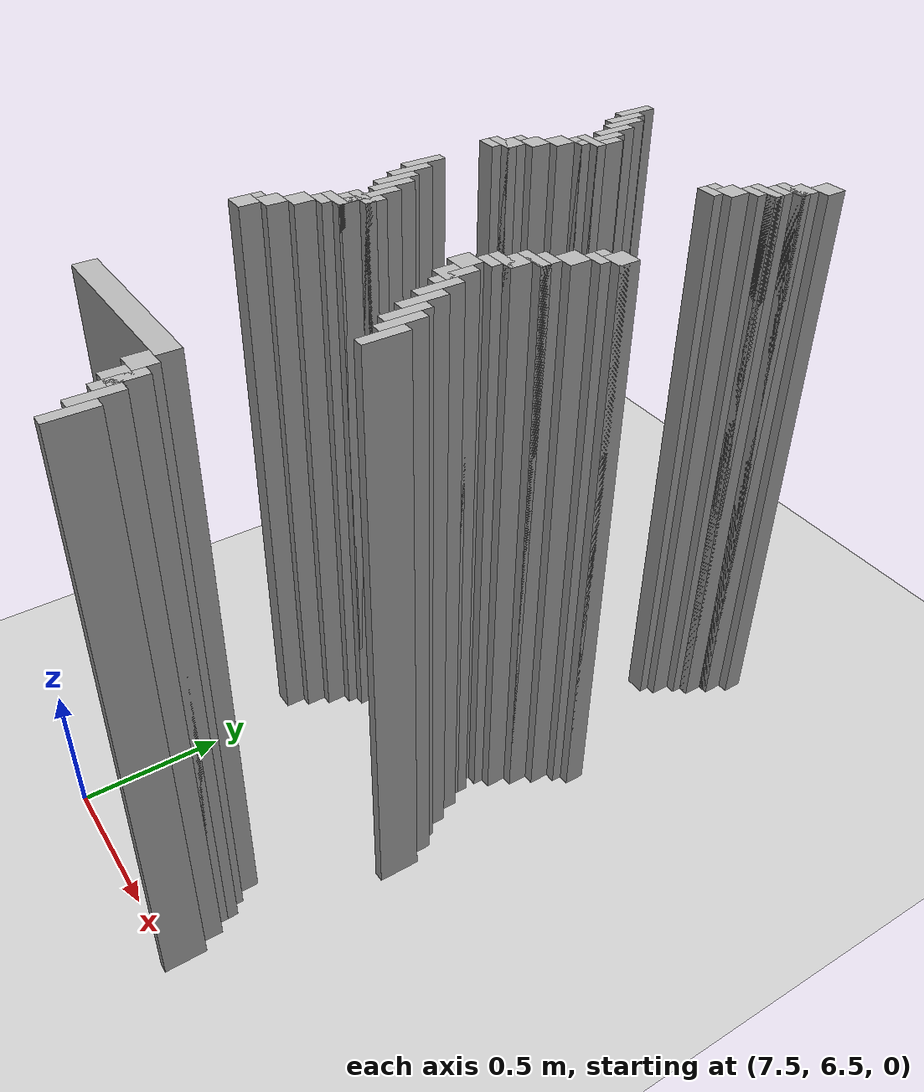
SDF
<sdf version="1.6">
 <world name="slam_world">
  <model name="ground_plane">
   <static>true</static>
   <link name="link">
    <collision name="collision">
     <geometry><plane><normal>0 0 1</normal><size>100 100</size></plane></geometry>
    </collision>
    <visual name="visual">
     <geometry><plane><normal>0 0 1</normal><size>100 100</size></plane></geometry>
     <material>
      <ambient>0.8 0.8 0.8 1</ambient>
      <diffuse>0.8 0.8 0.8 1</diffuse>
      <specular>0.8 0.8 0.8 1</specular>
     </material>
    </visual>
   </link>
  </model>
  <model name="wall_2874">
   <static>true</static>
   <pose>7.465197215777262 8.77030162412993 1.0 0 0 0</pose>
   <link name="link">
    <collision name="collision">
     <geometry><box><size>0.03480278422273782 0.13921113689095127 2.0</size></box></geometry>
    </collision>
    <visual name="visual">
     <geometry><box><size>0.03480278422273782 0.13921113689095127 2.0</size></box></geometry>
     <material><ambient>0.5 0.5 0.5 1</ambient><diffuse>0.7 0.7 0.7 1</diffuse></material>
    </visual>
   </link>
  </model>
  <model name="wall_2875">
   <static>true</static>
   <pose>8.2830626450116 8.805104408352667 1.0 0 0 0</pose>
   <link name="link">
    <collision name="collision">
     <geometry><box><size>0.06960556844547564 0.06960556844547564 2.0</size></box></geometry>
    </collision>
    <visual name="visual">
     <geometry><box><size>0.06960556844547564 0.06960556844547564 2.0</size></box></geometry>
     <material><ambient>0.5 0.5 0.5 1</ambient><diffuse>0.7 0.7 0.7 1</diffuse></material>
    </visual>
   </link>
  </model>
  <model name="wall_2887">
   <static>true</static>
   <pose>7.5 8.700696055684455 1.0 0 0 0</pose>
   <link name="link">
    <collision name="collision">
     <geometry><box><size>0.03480278422273782 0.13921113689095127 2.0</size></box></geometry>
    </collision>
    <visual name="visual">
     <geometry><box><size>0.03480278422273782 0.13921113689095127 2.0</size></box></geometry>
     <material><ambient>0.5 0.5 0.5 1</ambient><diffuse>0.7 0.7 0.7 1</diffuse></material>
    </visual>
   </link>
  </model>
  <model name="wall_2888">
   <static>true</static>
   <pose>8.248259860788863 8.735498839907192 1.0 0 0 0</pose>
   <link name="link">
    <collision name="collision">
     <geometry><box><size>0.06960556844547564 0.06960556844547564 2.0</size></box></geometry>
    </collision>
    <visual name="visual">
     <geometry><box><size>0.06960556844547564 0.06960556844547564 2.0</size></box></geometry>
     <material><ambient>0.5 0.5 0.5 1</ambient><diffuse>0.7 0.7 0.7 1</diffuse></material>
    </visual>
   </link>
  </model>
  <model name="wall_2900">
   <static>true</static>
   <pose>7.534802784222737 8.665893271461716 1.0 0 0 0</pose>
   <link name="link">
    <collision name="collision">
     <geometry><box><size>0.03480278422273782 0.13921113689095127 2.0</size></box></geometry>
    </collision>
    <visual name="visual">
     <geometry><box><size>0.03480278422273782 0.13921113689095127 2.0</size></box></geometry>
     <material><ambient>0.5 0.5 0.5 1</ambient><diffuse>0.7 0.7 0.7 1</diffuse></material>
    </visual>
   </link>
  </model>
  <model name="wall_2901">
   <static>true</static>
   <pose>8.230858468677495 8.718097447795824 1.0 0 0 0</pose>
   <link name="link">
    <collision name="collision">
     <geometry><box><size>0.10440835266821345 0.03480278422273782 2.0</size></box></geometry>
    </collision>
    <visual name="visual">
     <geometry><box><size>0.10440835266821345 0.03480278422273782 2.0</size></box></geometry>
     <material><ambient>0.5 0.5 0.5 1</ambient><diffuse>0.7 0.7 0.7 1</diffuse></material>
    </visual>
   </link>
  </model>
  <model name="wall_2910">
   <static>true</static>
   <pose>8.213457076566124 8.665893271461716 1.0 0 0 0</pose>
   <link name="link">
    <collision name="collision">
     <geometry><box><size>0.06960556844547564 0.06960556844547564 2.0</size></box></geometry>
    </collision>
    <visual name="visual">
     <geometry><box><size>0.06960556844547564 0.06960556844547564 2.0</size></box></geometry>
     <material><ambient>0.5 0.5 0.5 1</ambient><diffuse>0.7 0.7 0.7 1</diffuse></material>
    </visual>
   </link>
  </model>
  <model name="wall_2922">
   <static>true</static>
   <pose>7.569605568445476 8.596287703016241 1.0 0 0 0</pose>
   <link name="link">
    <collision name="collision">
     <geometry><box><size>0.03480278422273782 0.13921113689095127 2.0</size></box></geometry>
    </collision>
    <visual name="visual">
     <geometry><box><size>0.03480278422273782 0.13921113689095127 2.0</size></box></geometry>
     <material><ambient>0.5 0.5 0.5 1</ambient><diffuse>0.7 0.7 0.7 1</diffuse></material>
    </visual>
   </link>
  </model>
  <model name="wall_2923">
   <static>true</static>
   <pose>8.196055684454755 8.648491879350347 1.0 0 0 0</pose>
   <link name="link">
    <collision name="collision">
     <geometry><box><size>0.10440835266821345 0.03480278422273782 2.0</size></box></geometry>
    </collision>
    <visual name="visual">
     <geometry><box><size>0.10440835266821345 0.03480278422273782 2.0</size></box></geometry>
     <material><ambient>0.5 0.5 0.5 1</ambient><diffuse>0.7 0.7 0.7 1</diffuse></material>
    </visual>
   </link>
  </model>
  <model name="wall_2932">
   <static>true</static>
   <pose>8.178654292343387 8.61368909512761 1.0 0 0 0</pose>
   <link name="link">
    <collision name="collision">
     <geometry><box><size>0.06960556844547564 0.03480278422273782 2.0</size></box></geometry>
    </collision>
    <visual name="visual">
     <geometry><box><size>0.06960556844547564 0.03480278422273782 2.0</size></box></geometry>
     <material><ambient>0.5 0.5 0.5 1</ambient><diffuse>0.7 0.7 0.7 1</diffuse></material>
    </visual>
   </link>
  </model>
  <model name="wall_2941">
   <static>true</static>
   <pose>7.604408352668213 8.509280742459396 1.0 0 0 0</pose>
   <link name="link">
    <collision name="collision">
     <geometry><box><size>0.03480278422273782 0.17401392111368907 2.0</size></box></geometry>
    </collision>
    <visual name="visual">
     <geometry><box><size>0.03480278422273782 0.17401392111368907 2.0</size></box></geometry>
     <material><ambient>0.5 0.5 0.5 1</ambient><diffuse>0.7 0.7 0.7 1</diffuse></material>
    </visual>
   </link>
  </model>
  <model name="wall_2942">
   <static>true</static>
   <pose>8.14385150812065 8.561484918793504 1.0 0 0 0</pose>
   <link name="link">
    <collision name="collision">
     <geometry><box><size>0.06960556844547564 0.06960556844547564 2.0</size></box></geometry>
    </collision>
    <visual name="visual">
     <geometry><box><size>0.06960556844547564 0.06960556844547564 2.0</size></box></geometry>
     <material><ambient>0.5 0.5 0.5 1</ambient><diffuse>0.7 0.7 0.7 1</diffuse></material>
    </visual>
   </link>
  </model>
  <model name="wall_2954">
   <static>true</static>
   <pose>7.6392111368909505 8.509280742459396 1.0 0 0 0</pose>
   <link name="link">
    <collision name="collision">
     <geometry><box><size>0.03480278422273782 0.10440835266821345 2.0</size></box></geometry>
    </collision>
    <visual name="visual">
     <geometry><box><size>0.03480278422273782 0.10440835266821345 2.0</size></box></geometry>
     <material><ambient>0.5 0.5 0.5 1</ambient><diffuse>0.7 0.7 0.7 1</diffuse></material>
    </visual>
   </link>
  </model>
  <model name="wall_2955">
   <static>true</static>
   <pose>8.12645011600928 8.544083526682135 1.0 0 0 0</pose>
   <link name="link">
    <collision name="collision">
     <geometry><box><size>0.10440835266821345 0.03480278422273782 2.0</size></box></geometry>
    </collision>
    <visual name="visual">
     <geometry><box><size>0.10440835266821345 0.03480278422273782 2.0</size></box></geometry>
     <material><ambient>0.5 0.5 0.5 1</ambient><diffuse>0.7 0.7 0.7 1</diffuse></material>
    </visual>
   </link>
  </model>
  <model name="wall_2967">
   <static>true</static>
   <pose>8.109048723897912 8.509280742459396 1.0 0 0 0</pose>
   <link name="link">
    <collision name="collision">
     <geometry><box><size>0.06960556844547564 0.03480278422273782 2.0</size></box></geometry>
    </collision>
    <visual name="visual">
     <geometry><box><size>0.06960556844547564 0.03480278422273782 2.0</size></box></geometry>
     <material><ambient>0.5 0.5 0.5 1</ambient><diffuse>0.7 0.7 0.7 1</diffuse></material>
    </visual>
   </link>
  </model>
  <model name="wall_2980">
   <static>true</static>
   <pose>7.604408352668213 8.474477958236658 1.0 0 0 0</pose>
   <link name="link">
    <collision name="collision">
     <geometry><box><size>0.10440835266821345 0.03480278422273782 2.0</size></box></geometry>
    </collision>
    <visual name="visual">
     <geometry><box><size>0.10440835266821345 0.03480278422273782 2.0</size></box></geometry>
     <material><ambient>0.5 0.5 0.5 1</ambient><diffuse>0.7 0.7 0.7 1</diffuse></material>
    </visual>
   </link>
  </model>
  <model name="wall_2994">
   <static>true</static>
   <pose>7.587006960556844 8.43967517401392 1.0 0 0 0</pose>
   <link name="link">
    <collision name="collision">
     <geometry><box><size>0.06960556844547564 0.03480278422273782 2.0</size></box></geometry>
    </collision>
    <visual name="visual">
     <geometry><box><size>0.06960556844547564 0.03480278422273782 2.0</size></box></geometry>
     <material><ambient>0.5 0.5 0.5 1</ambient><diffuse>0.7 0.7 0.7 1</diffuse></material>
    </visual>
   </link>
  </model>
  <model name="wall_3009">
   <static>true</static>
   <pose>7.552204176334106 8.387470997679815 1.0 0 0 0</pose>
   <link name="link">
    <collision name="collision">
     <geometry><box><size>0.06960556844547564 0.06960556844547564 2.0</size></box></geometry>
    </collision>
    <visual name="visual">
     <geometry><box><size>0.06960556844547564 0.06960556844547564 2.0</size></box></geometry>
     <material><ambient>0.5 0.5 0.5 1</ambient><diffuse>0.7 0.7 0.7 1</diffuse></material>
    </visual>
   </link>
  </model>
  <model name="wall_3024">
   <static>true</static>
   <pose>7.517401392111369 8.317865429234338 1.0 0 0 0</pose>
   <link name="link">
    <collision name="collision">
     <geometry><box><size>0.06960556844547564 0.06960556844547564 2.0</size></box></geometry>
    </collision>
    <visual name="visual">
     <geometry><box><size>0.06960556844547564 0.06960556844547564 2.0</size></box></geometry>
     <material><ambient>0.5 0.5 0.5 1</ambient><diffuse>0.7 0.7 0.7 1</diffuse></material>
    </visual>
   </link>
  </model>
  <model name="wall_3039">
   <static>true</static>
   <pose>7.5 8.30046403712297 1.0 0 0 0</pose>
   <link name="link">
    <collision name="collision">
     <geometry><box><size>0.10440835266821345 0.03480278422273782 2.0</size></box></geometry>
    </collision>
    <visual name="visual">
     <geometry><box><size>0.10440835266821345 0.03480278422273782 2.0</size></box></geometry>
     <material><ambient>0.5 0.5 0.5 1</ambient><diffuse>0.7 0.7 0.7 1</diffuse></material>
    </visual>
   </link>
  </model>
  <model name="wall_3051">
   <static>true</static>
   <pose>7.48259860788863 8.248259860788863 1.0 0 0 0</pose>
   <link name="link">
    <collision name="collision">
     <geometry><box><size>0.06960556844547564 0.06960556844547564 2.0</size></box></geometry>
    </collision>
    <visual name="visual">
     <geometry><box><size>0.06960556844547564 0.06960556844547564 2.0</size></box></geometry>
     <material><ambient>0.5 0.5 0.5 1</ambient><diffuse>0.7 0.7 0.7 1</diffuse></material>
    </visual>
   </link>
  </model>
  <model name="wall_3064">
   <static>true</static>
   <pose>7.465197215777262 8.230858468677495 1.0 0 0 0</pose>
   <link name="link">
    <collision name="collision">
     <geometry><box><size>0.10440835266821345 0.03480278422273782 2.0</size></box></geometry>
    </collision>
    <visual name="visual">
     <geometry><box><size>0.10440835266821345 0.03480278422273782 2.0</size></box></geometry>
     <material><ambient>0.5 0.5 0.5 1</ambient><diffuse>0.7 0.7 0.7 1</diffuse></material>
    </visual>
   </link>
  </model>
  <model name="wall_3076">
   <static>true</static>
   <pose>7.447795823665893 8.196055684454755 1.0 0 0 0</pose>
   <link name="link">
    <collision name="collision">
     <geometry><box><size>0.06960556844547564 0.03480278422273782 2.0</size></box></geometry>
    </collision>
    <visual name="visual">
     <geometry><box><size>0.06960556844547564 0.03480278422273782 2.0</size></box></geometry>
     <material><ambient>0.5 0.5 0.5 1</ambient><diffuse>0.7 0.7 0.7 1</diffuse></material>
    </visual>
   </link>
  </model>
  <model name="wall_3142">
   <static>true</static>
   <pose>8.317865429234338 8.004640371229698 1.0 0 0 0</pose>
   <link name="link">
    <collision name="collision">
     <geometry><box><size>0.06960556844547564 0.06960556844547564 2.0</size></box></geometry>
    </collision>
    <visual name="visual">
     <geometry><box><size>0.06960556844547564 0.06960556844547564 2.0</size></box></geometry>
     <material><ambient>0.5 0.5 0.5 1</ambient><diffuse>0.7 0.7 0.7 1</diffuse></material>
    </visual>
   </link>
  </model>
  <model name="wall_3157">
   <static>true</static>
   <pose>7.465197215777262 7.935034802784222 1.0 0 0 0</pose>
   <link name="link">
    <collision name="collision">
     <geometry><box><size>0.03480278422273782 0.13921113689095127 2.0</size></box></geometry>
    </collision>
    <visual name="visual">
     <geometry><box><size>0.03480278422273782 0.13921113689095127 2.0</size></box></geometry>
     <material><ambient>0.5 0.5 0.5 1</ambient><diffuse>0.7 0.7 0.7 1</diffuse></material>
    </visual>
   </link>
  </model>
  <model name="wall_3158">
   <static>true</static>
   <pose>8.30046403712297 7.987238979118329 1.0 0 0 0</pose>
   <link name="link">
    <collision name="collision">
     <geometry><box><size>0.10440835266821345 0.03480278422273782 2.0</size></box></geometry>
    </collision>
    <visual name="visual">
     <geometry><box><size>0.10440835266821345 0.03480278422273782 2.0</size></box></geometry>
     <material><ambient>0.5 0.5 0.5 1</ambient><diffuse>0.7 0.7 0.7 1</diffuse></material>
    </visual>
   </link>
  </model>
  <model name="wall_3171">
   <static>true</static>
   <pose>8.2830626450116 7.952436194895592 1.0 0 0 0</pose>
   <link name="link">
    <collision name="collision">
     <geometry><box><size>0.06960556844547564 0.03480278422273782 2.0</size></box></geometry>
    </collision>
    <visual name="visual">
     <geometry><box><size>0.06960556844547564 0.03480278422273782 2.0</size></box></geometry>
     <material><ambient>0.5 0.5 0.5 1</ambient><diffuse>0.7 0.7 0.7 1</diffuse></material>
    </visual>
   </link>
  </model>
  <model name="wall_3184">
   <static>true</static>
   <pose>7.5 7.865429234338746 1.0 0 0 0</pose>
   <link name="link">
    <collision name="collision">
     <geometry><box><size>0.03480278422273782 0.13921113689095127 2.0</size></box></geometry>
    </collision>
    <visual name="visual">
     <geometry><box><size>0.03480278422273782 0.13921113689095127 2.0</size></box></geometry>
     <material><ambient>0.5 0.5 0.5 1</ambient><diffuse>0.7 0.7 0.7 1</diffuse></material>
    </visual>
   </link>
  </model>
  <model name="wall_3185">
   <static>true</static>
   <pose>8.248259860788863 7.900232018561485 1.0 0 0 0</pose>
   <link name="link">
    <collision name="collision">
     <geometry><box><size>0.06960556844547564 0.06960556844547564 2.0</size></box></geometry>
    </collision>
    <visual name="visual">
     <geometry><box><size>0.06960556844547564 0.06960556844547564 2.0</size></box></geometry>
     <material><ambient>0.5 0.5 0.5 1</ambient><diffuse>0.7 0.7 0.7 1</diffuse></material>
    </visual>
   </link>
  </model>
  <model name="wall_3200">
   <static>true</static>
   <pose>7.534802784222737 7.795823665893272 1.0 0 0 0</pose>
   <link name="link">
    <collision name="collision">
     <geometry><box><size>0.03480278422273782 0.13921113689095127 2.0</size></box></geometry>
    </collision>
    <visual name="visual">
     <geometry><box><size>0.03480278422273782 0.13921113689095127 2.0</size></box></geometry>
     <material><ambient>0.5 0.5 0.5 1</ambient><diffuse>0.7 0.7 0.7 1</diffuse></material>
    </visual>
   </link>
  </model>
  <model name="wall_3201">
   <static>true</static>
   <pose>8.213457076566124 7.830626450116009 1.0 0 0 0</pose>
   <link name="link">
    <collision name="collision">
     <geometry><box><size>0.06960556844547564 0.06960556844547564 2.0</size></box></geometry>
    </collision>
    <visual name="visual">
     <geometry><box><size>0.06960556844547564 0.06960556844547564 2.0</size></box></geometry>
     <material><ambient>0.5 0.5 0.5 1</ambient><diffuse>0.7 0.7 0.7 1</diffuse></material>
    </visual>
   </link>
  </model>
  <model name="wall_3216">
   <static>true</static>
   <pose>7.569605568445476 7.761020881670533 1.0 0 0 0</pose>
   <link name="link">
    <collision name="collision">
     <geometry><box><size>0.03480278422273782 0.13921113689095127 2.0</size></box></geometry>
    </collision>
    <visual name="visual">
     <geometry><box><size>0.03480278422273782 0.13921113689095127 2.0</size></box></geometry>
     <material><ambient>0.5 0.5 0.5 1</ambient><diffuse>0.7 0.7 0.7 1</diffuse></material>
    </visual>
   </link>
  </model>
  <model name="wall_3217">
   <static>true</static>
   <pose>8.196055684454755 7.81322505800464 1.0 0 0 0</pose>
   <link name="link">
    <collision name="collision">
     <geometry><box><size>0.10440835266821345 0.03480278422273782 2.0</size></box></geometry>
    </collision>
    <visual name="visual">
     <geometry><box><size>0.10440835266821345 0.03480278422273782 2.0</size></box></geometry>
     <material><ambient>0.5 0.5 0.5 1</ambient><diffuse>0.7 0.7 0.7 1</diffuse></material>
    </visual>
   </link>
  </model>
  <model name="wall_3230">
   <static>true</static>
   <pose>8.178654292343387 7.761020881670533 1.0 0 0 0</pose>
   <link name="link">
    <collision name="collision">
     <geometry><box><size>0.06960556844547564 0.06960556844547564 2.0</size></box></geometry>
    </collision>
    <visual name="visual">
     <geometry><box><size>0.06960556844547564 0.06960556844547564 2.0</size></box></geometry>
     <material><ambient>0.5 0.5 0.5 1</ambient><diffuse>0.7 0.7 0.7 1</diffuse></material>
    </visual>
   </link>
  </model>
  <model name="wall_3241">
   <static>true</static>
   <pose>7.604408352668213 7.65661252900232 1.0 0 0 0</pose>
   <link name="link">
    <collision name="collision">
     <geometry><box><size>0.03480278422273782 0.2088167053364269 2.0</size></box></geometry>
    </collision>
    <visual name="visual">
     <geometry><box><size>0.03480278422273782 0.2088167053364269 2.0</size></box></geometry>
     <material><ambient>0.5 0.5 0.5 1</ambient><diffuse>0.7 0.7 0.7 1</diffuse></material>
    </visual>
   </link>
  </model>
  <model name="wall_3242">
   <static>true</static>
   <pose>8.161252900232018 7.743619489559165 1.0 0 0 0</pose>
   <link name="link">
    <collision name="collision">
     <geometry><box><size>0.10440835266821345 0.03480278422273782 2.0</size></box></geometry>
    </collision>
    <visual name="visual">
     <geometry><box><size>0.10440835266821345 0.03480278422273782 2.0</size></box></geometry>
     <material><ambient>0.5 0.5 0.5 1</ambient><diffuse>0.7 0.7 0.7 1</diffuse></material>
    </visual>
   </link>
  </model>
  <model name="wall_3255">
   <static>true</static>
   <pose>8.14385150812065 7.708816705336426 1.0 0 0 0</pose>
   <link name="link">
    <collision name="collision">
     <geometry><box><size>0.06960556844547564 0.03480278422273782 2.0</size></box></geometry>
    </collision>
    <visual name="visual">
     <geometry><box><size>0.06960556844547564 0.03480278422273782 2.0</size></box></geometry>
     <material><ambient>0.5 0.5 0.5 1</ambient><diffuse>0.7 0.7 0.7 1</diffuse></material>
    </visual>
   </link>
  </model>
  <model name="wall_3267">
   <static>true</static>
   <pose>7.6392111368909505 7.65661252900232 1.0 0 0 0</pose>
   <link name="link">
    <collision name="collision">
     <geometry><box><size>0.03480278422273782 0.06960556844547564 2.0</size></box></geometry>
    </collision>
    <visual name="visual">
     <geometry><box><size>0.03480278422273782 0.06960556844547564 2.0</size></box></geometry>
     <material><ambient>0.5 0.5 0.5 1</ambient><diffuse>0.7 0.7 0.7 1</diffuse></material>
    </visual>
   </link>
  </model>
  <model name="wall_3268">
   <static>true</static>
   <pose>8.109048723897912 7.65661252900232 1.0 0 0 0</pose>
   <link name="link">
    <collision name="collision">
     <geometry><box><size>0.06960556844547564 0.06960556844547564 2.0</size></box></geometry>
    </collision>
    <visual name="visual">
     <geometry><box><size>0.06960556844547564 0.06960556844547564 2.0</size></box></geometry>
     <material><ambient>0.5 0.5 0.5 1</ambient><diffuse>0.7 0.7 0.7 1</diffuse></material>
    </visual>
   </link>
  </model>
  <model name="wall_3283">
   <static>true</static>
   <pose>7.604408352668213 7.6392111368909505 1.0 0 0 0</pose>
   <link name="link">
    <collision name="collision">
     <geometry><box><size>0.10440835266821345 0.03480278422273782 2.0</size></box></geometry>
    </collision>
    <visual name="visual">
     <geometry><box><size>0.10440835266821345 0.03480278422273782 2.0</size></box></geometry>
     <material><ambient>0.5 0.5 0.5 1</ambient><diffuse>0.7 0.7 0.7 1</diffuse></material>
    </visual>
   </link>
  </model>
  <model name="wall_3284">
   <static>true</static>
   <pose>8.161252900232018 7.587006960556844 1.0 0 0 0</pose>
   <link name="link">
    <collision name="collision">
     <geometry><box><size>0.03480278422273782 0.13921113689095127 2.0</size></box></geometry>
    </collision>
    <visual name="visual">
     <geometry><box><size>0.03480278422273782 0.13921113689095127 2.0</size></box></geometry>
     <material><ambient>0.5 0.5 0.5 1</ambient><diffuse>0.7 0.7 0.7 1</diffuse></material>
    </visual>
   </link>
  </model>
  <model name="wall_3298">
   <static>true</static>
   <pose>7.587006960556844 7.587006960556844 1.0 0 0 0</pose>
   <link name="link">
    <collision name="collision">
     <geometry><box><size>0.06960556844547564 0.06960556844547564 2.0</size></box></geometry>
    </collision>
    <visual name="visual">
     <geometry><box><size>0.06960556844547564 0.06960556844547564 2.0</size></box></geometry>
     <material><ambient>0.5 0.5 0.5 1</ambient><diffuse>0.7 0.7 0.7 1</diffuse></material>
    </visual>
   </link>
  </model>
  <model name="wall_3299">
   <static>true</static>
   <pose>8.14385150812065 7.587006960556844 1.0 0 0 0</pose>
   <link name="link">
    <collision name="collision">
     <geometry><box><size>0.06960556844547564 0.06960556844547564 2.0</size></box></geometry>
    </collision>
    <visual name="visual">
     <geometry><box><size>0.06960556844547564 0.06960556844547564 2.0</size></box></geometry>
     <material><ambient>0.5 0.5 0.5 1</ambient><diffuse>0.7 0.7 0.7 1</diffuse></material>
    </visual>
   </link>
  </model>
  <model name="wall_3314">
   <static>true</static>
   <pose>7.569605568445476 7.569605568445476 1.0 0 0 0</pose>
   <link name="link">
    <collision name="collision">
     <geometry><box><size>0.10440835266821345 0.03480278422273782 2.0</size></box></geometry>
    </collision>
    <visual name="visual">
     <geometry><box><size>0.10440835266821345 0.03480278422273782 2.0</size></box></geometry>
     <material><ambient>0.5 0.5 0.5 1</ambient><diffuse>0.7 0.7 0.7 1</diffuse></material>
    </visual>
   </link>
  </model>
  <model name="wall_3315">
   <static>true</static>
   <pose>8.196055684454755 7.517401392111369 1.0 0 0 0</pose>
   <link name="link">
    <collision name="collision">
     <geometry><box><size>0.03480278422273782 0.13921113689095127 2.0</size></box></geometry>
    </collision>
    <visual name="visual">
     <geometry><box><size>0.03480278422273782 0.13921113689095127 2.0</size></box></geometry>
     <material><ambient>0.5 0.5 0.5 1</ambient><diffuse>0.7 0.7 0.7 1</diffuse></material>
    </visual>
   </link>
  </model>
  <model name="wall_3328">
   <static>true</static>
   <pose>7.552204176334106 7.534802784222737 1.0 0 0 0</pose>
   <link name="link">
    <collision name="collision">
     <geometry><box><size>0.06960556844547564 0.03480278422273782 2.0</size></box></geometry>
    </collision>
    <visual name="visual">
     <geometry><box><size>0.06960556844547564 0.03480278422273782 2.0</size></box></geometry>
     <material><ambient>0.5 0.5 0.5 1</ambient><diffuse>0.7 0.7 0.7 1</diffuse></material>
    </visual>
   </link>
  </model>
  <model name="wall_3341">
   <static>true</static>
   <pose>7.517401392111369 7.48259860788863 1.0 0 0 0</pose>
   <link name="link">
    <collision name="collision">
     <geometry><box><size>0.06960556844547564 0.06960556844547564 2.0</size></box></geometry>
    </collision>
    <visual name="visual">
     <geometry><box><size>0.06960556844547564 0.06960556844547564 2.0</size></box></geometry>
     <material><ambient>0.5 0.5 0.5 1</ambient><diffuse>0.7 0.7 0.7 1</diffuse></material>
    </visual>
   </link>
  </model>
  <model name="wall_3342">
   <static>true</static>
   <pose>8.230858468677495 7.447795823665893 1.0 0 0 0</pose>
   <link name="link">
    <collision name="collision">
     <geometry><box><size>0.03480278422273782 0.13921113689095127 2.0</size></box></geometry>
    </collision>
    <visual name="visual">
     <geometry><box><size>0.03480278422273782 0.13921113689095127 2.0</size></box></geometry>
     <material><ambient>0.5 0.5 0.5 1</ambient><diffuse>0.7 0.7 0.7 1</diffuse></material>
    </visual>
   </link>
  </model>
  <model name="wall_3357">
   <static>true</static>
   <pose>7.48259860788863 7.412993039443156 1.0 0 0 0</pose>
   <link name="link">
    <collision name="collision">
     <geometry><box><size>0.06960556844547564 0.06960556844547564 2.0</size></box></geometry>
    </collision>
    <visual name="visual">
     <geometry><box><size>0.06960556844547564 0.06960556844547564 2.0</size></box></geometry>
     <material><ambient>0.5 0.5 0.5 1</ambient><diffuse>0.7 0.7 0.7 1</diffuse></material>
    </visual>
   </link>
  </model>
  <model name="wall_3358">
   <static>true</static>
   <pose>8.265661252900232 7.378190255220417 1.0 0 0 0</pose>
   <link name="link">
    <collision name="collision">
     <geometry><box><size>0.03480278422273782 0.13921113689095127 2.0</size></box></geometry>
    </collision>
    <visual name="visual">
     <geometry><box><size>0.03480278422273782 0.13921113689095127 2.0</size></box></geometry>
     <material><ambient>0.5 0.5 0.5 1</ambient><diffuse>0.7 0.7 0.7 1</diffuse></material>
    </visual>
   </link>
  </model>
  <model name="wall_3373">
   <static>true</static>
   <pose>7.465197215777262 7.395591647331786 1.0 0 0 0</pose>
   <link name="link">
    <collision name="collision">
     <geometry><box><size>0.10440835266821345 0.03480278422273782 2.0</size></box></geometry>
    </collision>
    <visual name="visual">
     <geometry><box><size>0.10440835266821345 0.03480278422273782 2.0</size></box></geometry>
     <material><ambient>0.5 0.5 0.5 1</ambient><diffuse>0.7 0.7 0.7 1</diffuse></material>
    </visual>
   </link>
  </model>
  <model name="wall_3374">
   <static>true</static>
   <pose>8.30046403712297 7.34338747099768 1.0 0 0 0</pose>
   <link name="link">
    <collision name="collision">
     <geometry><box><size>0.03480278422273782 0.13921113689095127 2.0</size></box></geometry>
    </collision>
    <visual name="visual">
     <geometry><box><size>0.03480278422273782 0.13921113689095127 2.0</size></box></geometry>
     <material><ambient>0.5 0.5 0.5 1</ambient><diffuse>0.7 0.7 0.7 1</diffuse></material>
    </visual>
   </link>
  </model>
  <model name="wall_3386">
   <static>true</static>
   <pose>7.447795823665893 7.34338747099768 1.0 0 0 0</pose>
   <link name="link">
    <collision name="collision">
     <geometry><box><size>0.06960556844547564 0.06960556844547564 2.0</size></box></geometry>
    </collision>
    <visual name="visual">
     <geometry><box><size>0.06960556844547564 0.06960556844547564 2.0</size></box></geometry>
     <material><ambient>0.5 0.5 0.5 1</ambient><diffuse>0.7 0.7 0.7 1</diffuse></material>
    </visual>
   </link>
  </model>
  <model name="wall_3399">
   <static>true</static>
   <pose>8.335266821345707 7.273781902552204 1.0 0 0 0</pose>
   <link name="link">
    <collision name="collision">
     <geometry><box><size>0.03480278422273782 0.13921113689095127 2.0</size></box></geometry>
    </collision>
    <visual name="visual">
     <geometry><box><size>0.03480278422273782 0.13921113689095127 2.0</size></box></geometry>
     <material><ambient>0.5 0.5 0.5 1</ambient><diffuse>0.7 0.7 0.7 1</diffuse></material>
    </visual>
   </link>
  </model>
  <model name="wall_3539">
   <static>true</static>
   <pose>7.865429234338746 6.821345707656612 1.0 0 0 0</pose>
   <link name="link">
    <collision name="collision">
     <geometry><box><size>0.5568445475638051 0.06960556844547564 2.0</size></box></geometry>
    </collision>
    <visual name="visual">
     <geometry><box><size>0.5568445475638051 0.06960556844547564 2.0</size></box></geometry>
     <material><ambient>0.5 0.5 0.5 1</ambient><diffuse>0.7 0.7 0.7 1</diffuse></material>
    </visual>
   </link>
  </model>
  <model name="wall_3559">
   <static>true</static>
   <pose>8.14385150812065 6.751740139211137 1.0 0 0 0</pose>
   <link name="link">
    <collision name="collision">
     <geometry><box><size>0.06960556844547564 0.06960556844547564 2.0</size></box></geometry>
    </collision>
    <visual name="visual">
     <geometry><box><size>0.06960556844547564 0.06960556844547564 2.0</size></box></geometry>
     <material><ambient>0.5 0.5 0.5 1</ambient><diffuse>0.7 0.7 0.7 1</diffuse></material>
    </visual>
   </link>
  </model>
  <model name="wall_3572">
   <static>true</static>
   <pose>8.196055684454755 6.682134570765661 1.0 0 0 0</pose>
   <link name="link">
    <collision name="collision">
     <geometry><box><size>0.03480278422273782 0.13921113689095127 2.0</size></box></geometry>
    </collision>
    <visual name="visual">
     <geometry><box><size>0.03480278422273782 0.13921113689095127 2.0</size></box></geometry>
     <material><ambient>0.5 0.5 0.5 1</ambient><diffuse>0.7 0.7 0.7 1</diffuse></material>
    </visual>
   </link>
  </model>
  <model name="wall_3585">
   <static>true</static>
   <pose>8.178654292343387 6.682134570765661 1.0 0 0 0</pose>
   <link name="link">
    <collision name="collision">
     <geometry><box><size>0.06960556844547564 0.06960556844547564 2.0</size></box></geometry>
    </collision>
    <visual name="visual">
     <geometry><box><size>0.06960556844547564 0.06960556844547564 2.0</size></box></geometry>
     <material><ambient>0.5 0.5 0.5 1</ambient><diffuse>0.7 0.7 0.7 1</diffuse></material>
    </visual>
   </link>
  </model>
  <model name="wall_3598">
   <static>true</static>
   <pose>8.230858468677495 6.612529002320185 1.0 0 0 0</pose>
   <link name="link">
    <collision name="collision">
     <geometry><box><size>0.03480278422273782 0.13921113689095127 2.0</size></box></geometry>
    </collision>
    <visual name="visual">
     <geometry><box><size>0.03480278422273782 0.13921113689095127 2.0</size></box></geometry>
     <material><ambient>0.5 0.5 0.5 1</ambient><diffuse>0.7 0.7 0.7 1</diffuse></material>
    </visual>
   </link>
  </model>
  <model name="wall_3618">
   <static>true</static>
   <pose>8.265661252900232 6.5429234338747095 1.0 0 0 0</pose>
   <link name="link">
    <collision name="collision">
     <geometry><box><size>0.03480278422273782 0.13921113689095127 2.0</size></box></geometry>
    </collision>
    <visual name="visual">
     <geometry><box><size>0.03480278422273782 0.13921113689095127 2.0</size></box></geometry>
     <material><ambient>0.5 0.5 0.5 1</ambient><diffuse>0.7 0.7 0.7 1</diffuse></material>
    </visual>
   </link>
  </model>
 </world>
</sdf>
